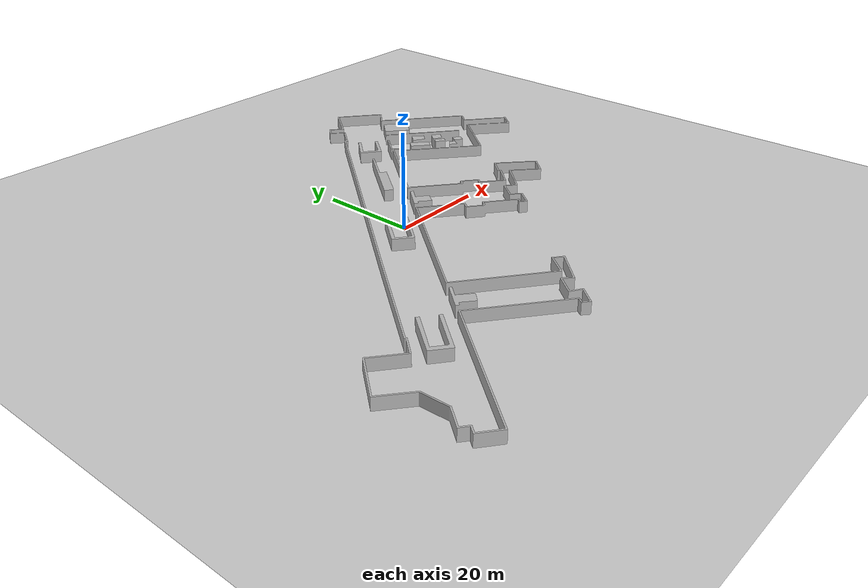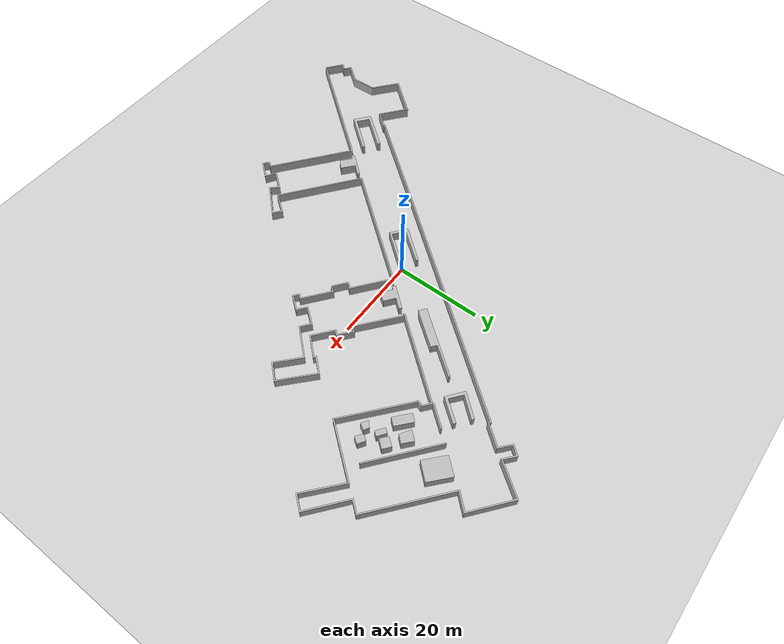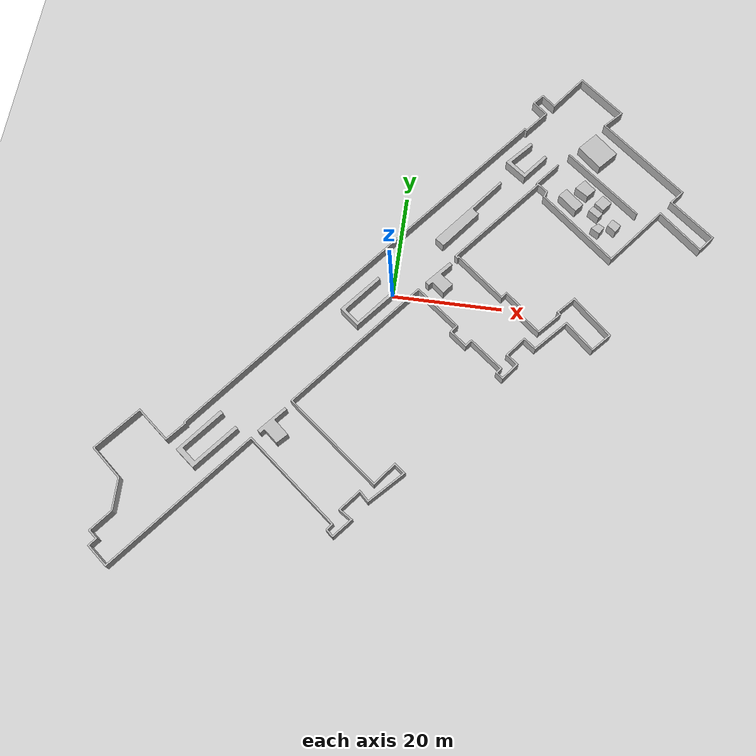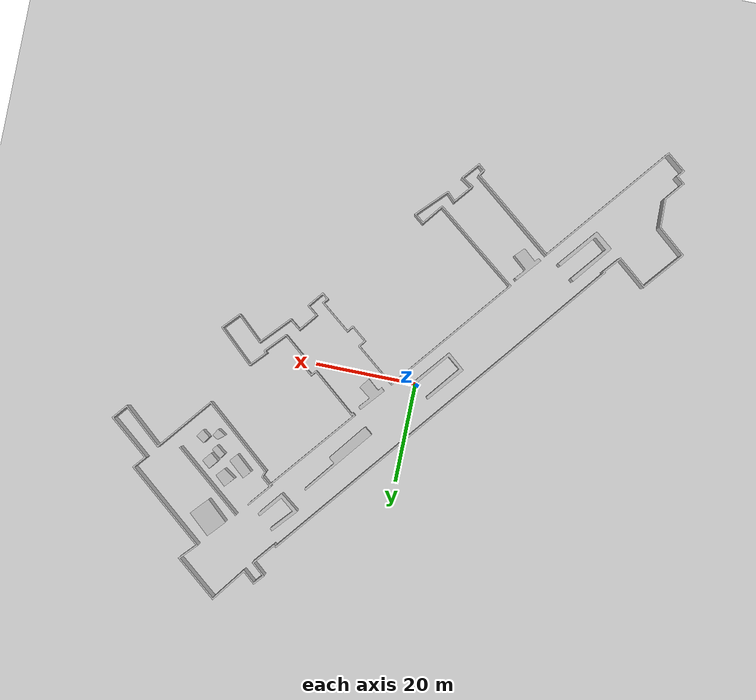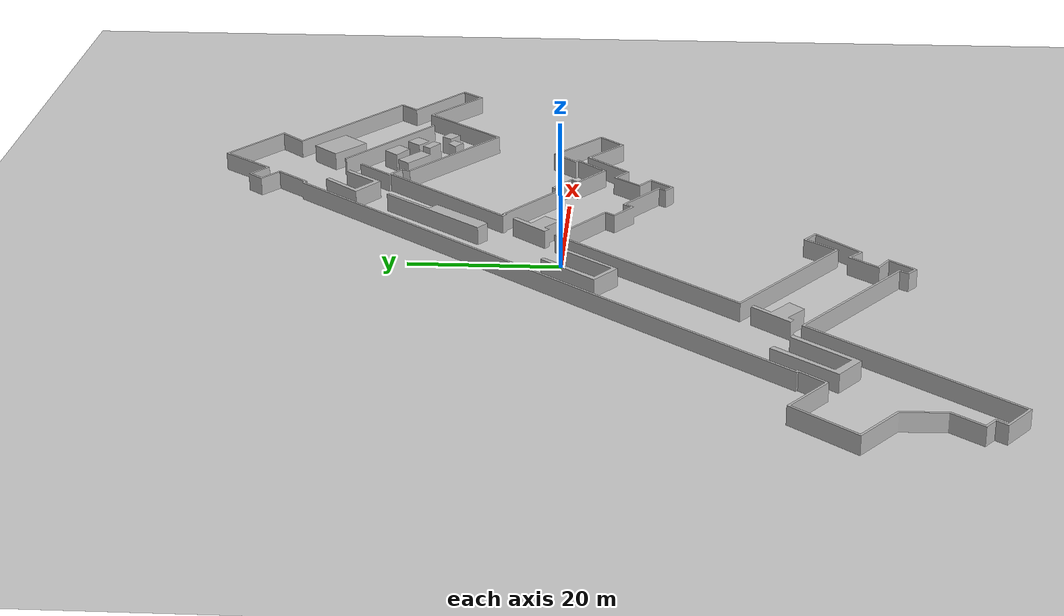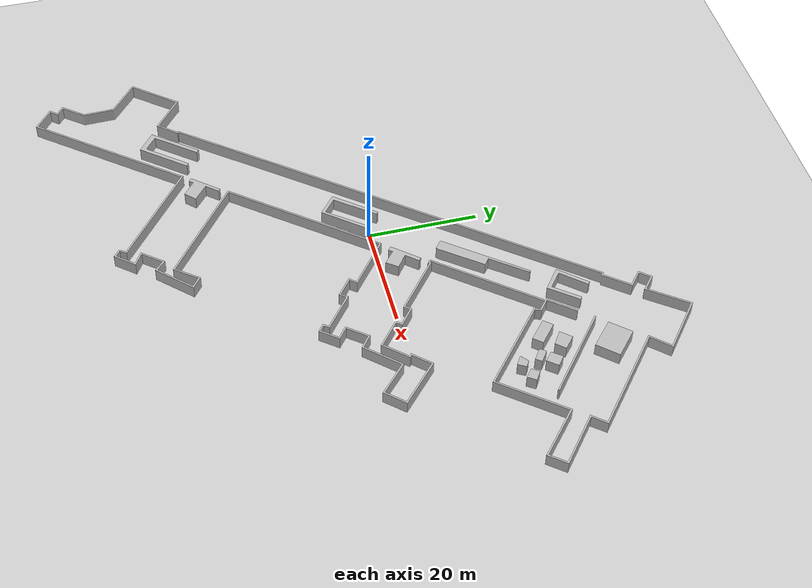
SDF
<?xml version="1.0" ?>
<sdf version="1.5">
  <world name="default">
    <include>
      <uri>model://sun</uri>
    </include>
    <include>
      <uri>model://ground_plane</uri>
    </include>

    <include>
      <uri>model://facultad_ull</uri>
      <name>facultad_ull</name>
      <pose>0 0 0.1 1.5708 0 0</pose>
    </include>
  </world>
</sdf>

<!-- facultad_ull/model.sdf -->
<sdf version="1.6">
  <model name="facultad_ull">
    <static>true</static>
    <link name="link">
      <collision name="collision">
        <geometry>
          <mesh>
            <uri>model://facultad_ull/meshes/modelo_facultad.stl</uri>
            <scale>1 1 1</scale>
          </mesh>
        </geometry>
      </collision>
      <visual name="visual">
        <geometry>
          <mesh>
            <uri>model://facultad_ull/meshes/modelo_facultad.stl</uri>
            <scale>1 1 1</scale>
          </mesh>
        </geometry>
      </visual>
    </link>
  </model>
</sdf>
